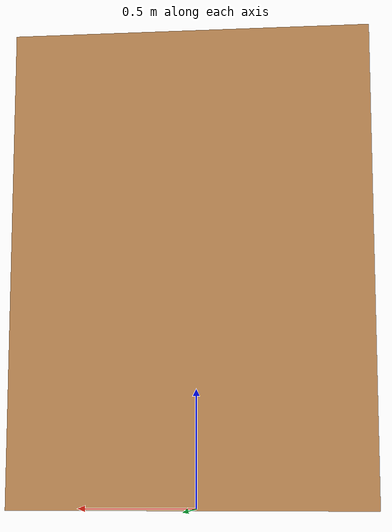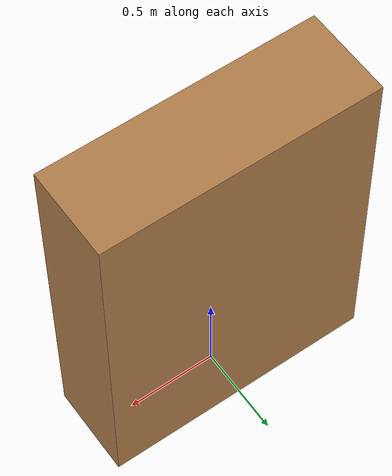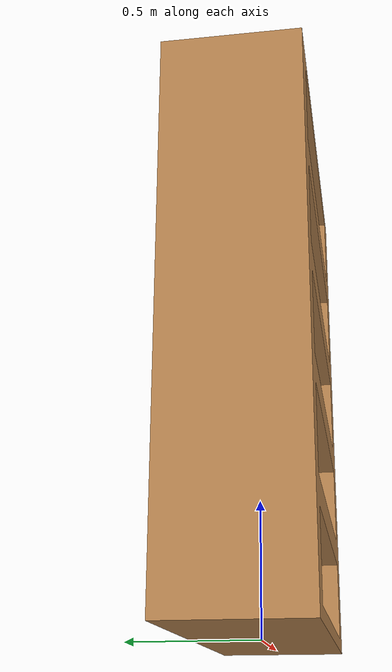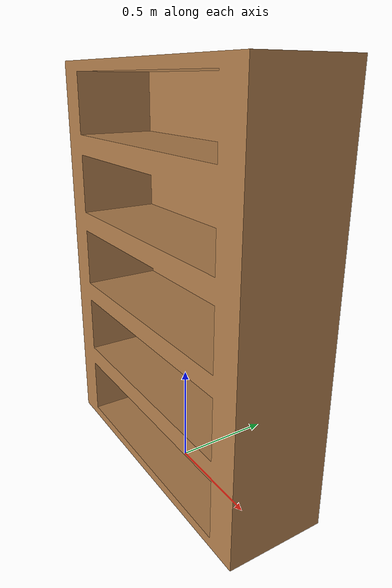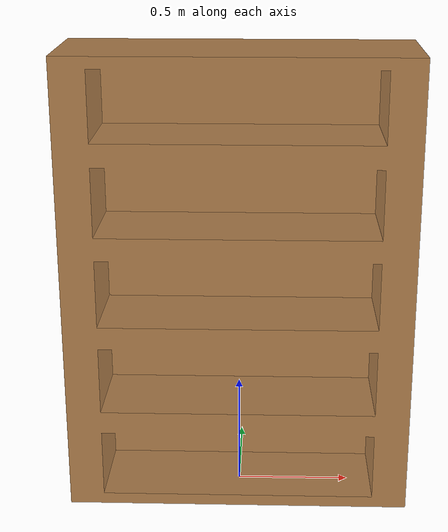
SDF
<?xml version="1.0" ?>
<sdf version="1.5">
  <model name="bookshelf_1_5m">
    <static>true</static>
    <link name='defaultModel_0::custom_0'>
      <pose>0 0 1 1.57 0 0</pose>
      <gravity>1</gravity>
      <self_collide>0</self_collide>
      <kinematic>0</kinematic>
      <visual name='custom_0_visual'>
        <pose>0 0 0 0 0 0</pose>
        <geometry>
          <mesh>
            <uri>model://bookshelf_1_5m/scaffale.dae</uri>
            <scale>1.5 1 1</scale>
          </mesh>
        </geometry>
        <material>
          <script>
            <uri>file://media/materials/scripts/gazebo.material</uri>
            <name>Gazebo/Wood</name>
          </script>
        </material>
      </visual>
      <collision name='defaultModel_0::custom_0_collision'>
        <geometry>
          <mesh>
            <uri>model://bookshelf_1_5m/scaffale.dae</uri>
            <scale>1.5 1 1</scale>
          </mesh>
        </geometry>
        <pose>0 0 0 0 0 0</pose>
      </collision>
    </link>
  </model>
</sdf>
